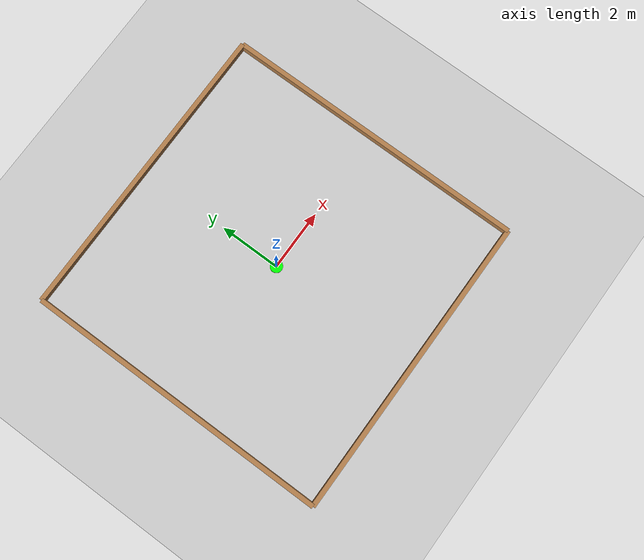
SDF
<?xml version="1.0" ?>
<sdf version="1.6">
  <world name="default">
    <include>
      <uri>model://ground_plane</uri>
    </include>
    <include>
      <uri>model://sun</uri>
    </include>
    <include>
      <uri>model://Cour</uri>
    </include>
    <include>
      <uri>model://Herbe</uri>
      <name>Herbe1</name>
      <pose>0 0 0 0 0 0</pose>
    </include>
  </world>
</sdf>

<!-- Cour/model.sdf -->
<sdf version='1.6'>
  <model name='Cour'>
    <pose frame=''>0 0 0 0 -0 0</pose>
    <link name='Wall_0'>
      <collision name='Wall_0_Collision'>
        <geometry>
          <box>
            <size>10 0.15 0.5</size>
          </box>
        </geometry>
        <pose frame=''>0 0 0 0 -0 0</pose>
      </collision>
      <visual name='Wall_0_Visual'>
        <pose frame=''>0 0 0 0 -0 0</pose>
        <geometry>
          <box>
            <size>10 0.15 0.5</size>
          </box>
        </geometry>
        <material>
          <script>
            <uri>file://media/materials/scripts/gazebo.material</uri>
            <name>Gazebo/Wood</name>
          </script>
          <ambient>1 1 1 1</ambient>
        </material>
        <meta>
          <layer>0</layer>
        </meta>
      </visual>
      <pose frame=''>-0 -5 0 0 -0 0</pose>
    </link>
    <link name='Wall_1'>
      <collision name='Wall_1_Collision'>
        <geometry>
          <box>
            <size>10 0.15 0.5</size>
          </box>
        </geometry>
        <pose frame=''>0 0 00 -0 0</pose>
      </collision>
      <visual name='Wall_1_Visual'>
        <pose frame=''>0 0 0 0 -0 0</pose>
        <geometry>
          <box>
            <size>10 0.15 0.5</size>
          </box>
        </geometry>
        <material>
          <script>
            <uri>file://media/materials/scripts/gazebo.material</uri>
            <name>Gazebo/Wood</name>
          </script>
          <ambient>1 1 1 1</ambient>
        </material>
        <meta>
          <layer>0</layer>
        </meta>
      </visual>
      <pose frame=''>5 0 0 0 -0 1.5708</pose>
    </link>
    <link name='Wall_2'>
      <collision name='Wall_2_Collision'>
        <geometry>
          <box>
            <size>10 0.15 0.5</size>
          </box>
        </geometry>
        <pose frame=''>0 0 0 0 -0 0</pose>
      </collision>
      <visual name='Wall_2_Visual'>
        <pose frame=''>0 0 0 0 -0 0</pose>
        <geometry>
          <box>
            <size>10 0.15 0.5</size>
          </box>
        </geometry>
        <material>
          <script>
            <uri>file://media/materials/scripts/gazebo.material</uri>
            <name>Gazebo/Wood</name>
          </script>
          <ambient>1 1 1 1</ambient>
        </material>
        <meta>
          <layer>0</layer>
        </meta>
      </visual>
      <pose frame=''>-0 5 0 0 -0 3.14159</pose>
    </link>
    <link name='Wall_3'>
      <collision name='Wall_3_Collision'>
        <geometry>
          <box>
            <size>10 0.15 0.5</size>
          </box>
        </geometry>
        <pose frame=''>0 0 0 0 -0 0</pose>
      </collision>
      <visual name='Wall_3_Visual'>
        <pose frame=''>0 0 0 0 -0 0</pose>
        <geometry>
          <box>
            <size>10 0.15 0.5</size>
          </box>
        </geometry>
        <material>
          <script>
            <uri>file://media/materials/scripts/gazebo.material</uri>
            <name>Gazebo/Wood</name>
          </script>
          <ambient>1 1 1 1</ambient>
        </material>
        <meta>
          <layer>0</layer>
        </meta>
      </visual>
      <pose frame=''>-5 0 0 0 -0 -1.5708</pose>
    </link>
    <static>1</static>
  </model>
</sdf>

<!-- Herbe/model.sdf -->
<sdf version='1.6'>
  <model name='Herbe'>
    <link name='link_7'>
      <inertial>
        <mass>1</mass>
        <inertia>
          <ixx>0.145833</ixx>
          <ixy>0</ixy>
          <ixz>0</ixz>
          <iyy>0.145833</iyy>
          <iyz>0</iyz>
          <izz>0.125</izz>
        </inertia>
        <pose frame=''>0 0 0 0 -0 0</pose>
      </inertial>
      <pose frame=''>0 0 0.0 0 -0 0</pose>
      <gravity>1</gravity>
      <self_collide>0</self_collide>
      <kinematic>0</kinematic>
      <enable_wind>0</enable_wind>
      <visual name='visual'>
        <pose frame=''>0 0 0 0 -0 0</pose>
        <geometry>
          <cylinder>
            <radius>0.2</radius>
            <length>0.1</length>
          </cylinder>
        </geometry>
        <material>
          <lighting>1</lighting>
          <script>
            <uri>file://media/materials/scripts/gazebo.material</uri>
            <name>Gazebo/Grey</name>
          </script>
          <shader type='vertex'>
            <normal_map>__default__</normal_map>
          </shader>
          <ambient> 0.3 1 0.3 1</ambient>
          <diffuse>0 1 0 1</diffuse>
        </material>
        <transparency>0</transparency>
        <cast_shadows>1</cast_shadows>
      </visual>
    </link>
    <static>1</static>
    <allow_auto_disable>1</allow_auto_disable>
  </model>
</sdf>
